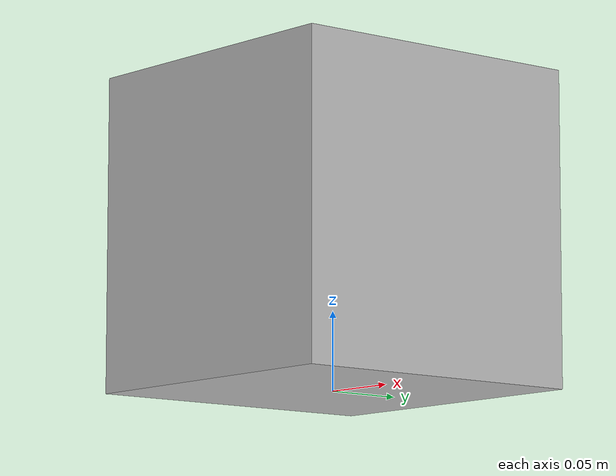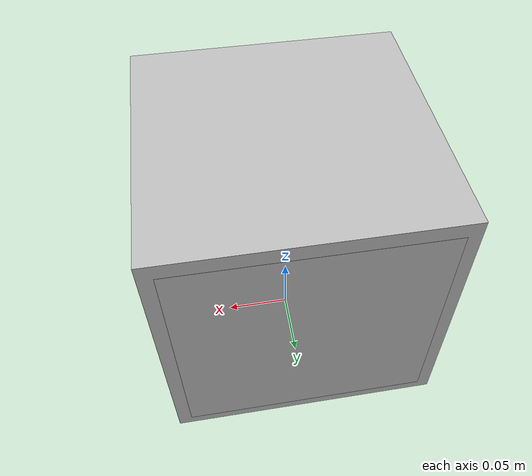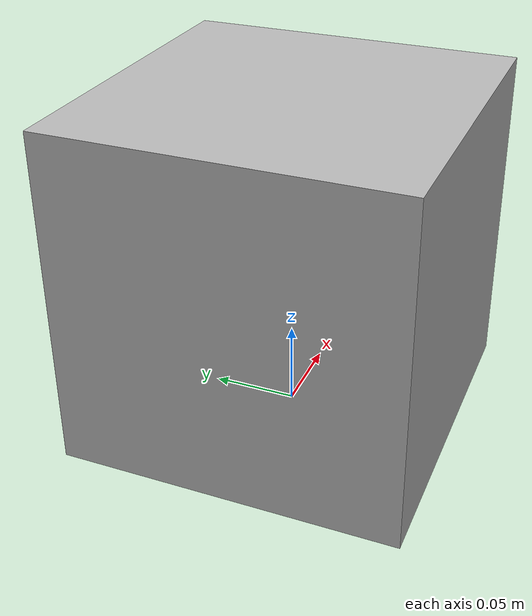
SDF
<?xml version="1.0" ?>
<sdf version="1.6">
  <model name="aruco_box_id_20">
    <link name="aruco_link">
      <pose>0 0 0.1 0 0 0</pose>

      <collision name="collision">
        <geometry>
          <box>
            <size>0.2 0.2 0.2</size>
          </box>
        </geometry>
      </collision>

      <visual name="visual">
        <geometry>
          <box>
            <size>0.2 0.2 0.2</size>
          </box>
        </geometry>
      </visual>

      <!-- Marker face (front, upright) -->
      <visual name="aruco_marker_face">
        <pose>0 0.101 0 1.5708 0 3.14159</pose>
        <geometry>
          <plane>
            <size>0.18 0.18</size>
          </plane>
        </geometry>
        <material>
          <script>
            <uri>model://aruco_box_id_20/materials/scripts</uri>
            <uri>model://aruco_box_id_20/materials/textures</uri>
            <name>aruco/marker_20</name>
          </script>
        </material>
      </visual>

    </link>
  </model>
</sdf>
